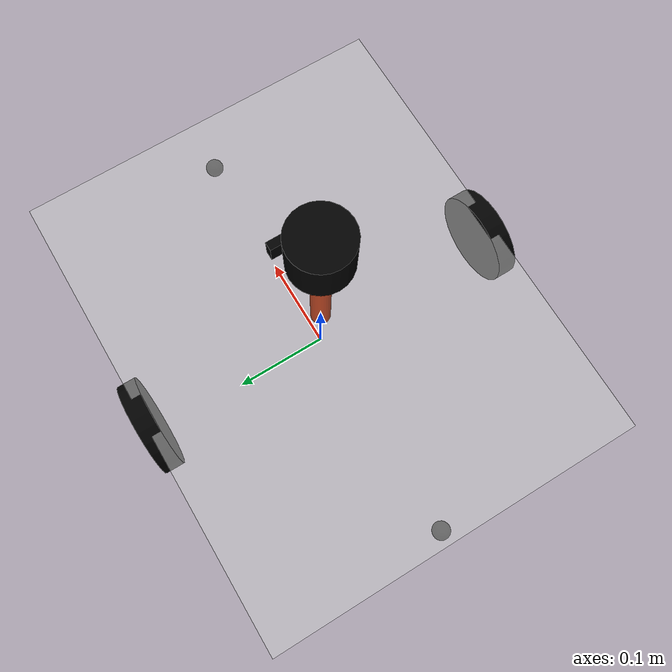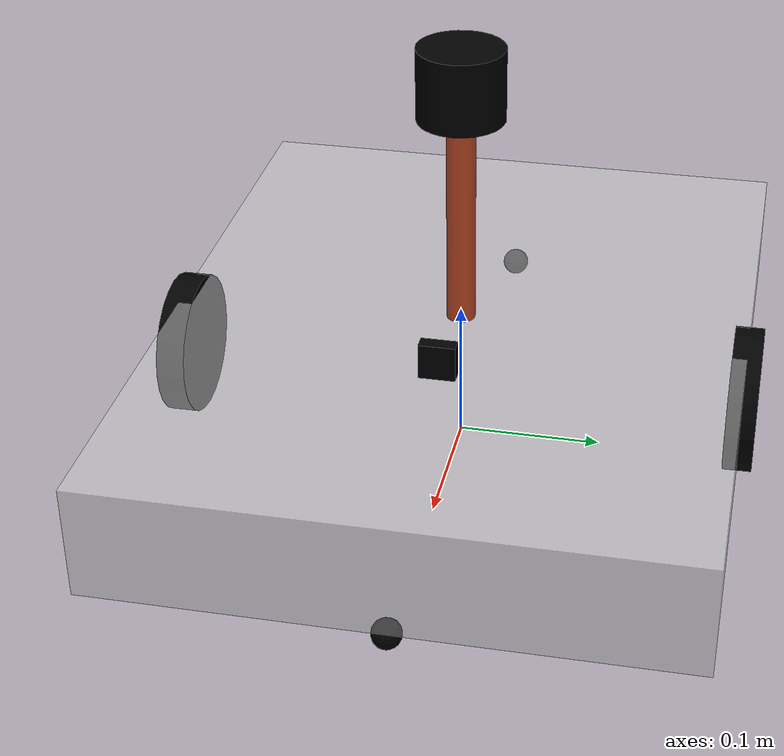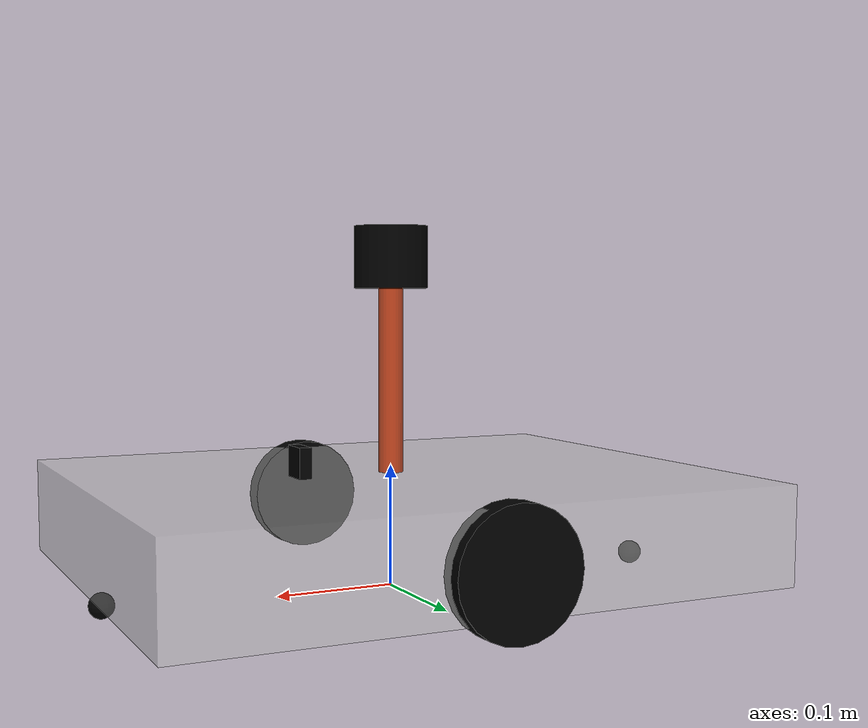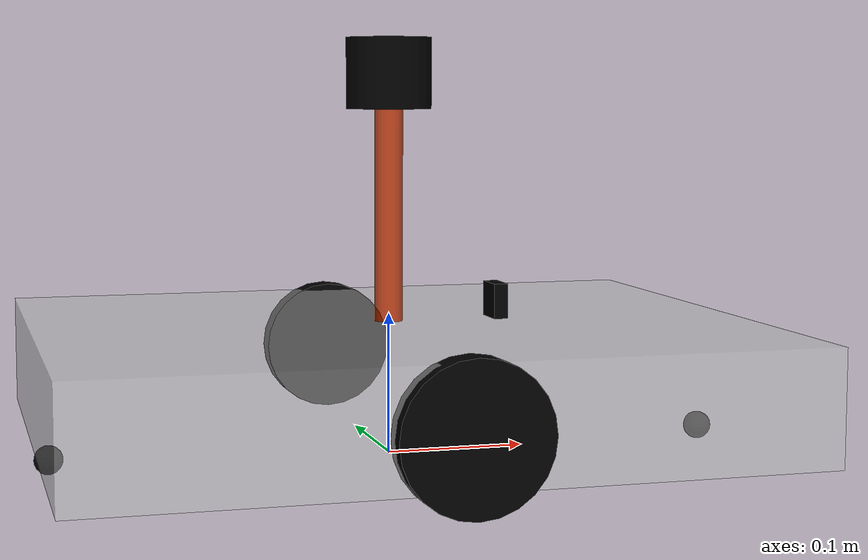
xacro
<?xml version="1.0" encoding="UTF-8" ?>
<!-- combination -->
<robot name="car" xmlns:xacro="http://wiki.ros.org/xacro">
    <xacro:include filename="base.xacro" />
    <xacro:include filename="chassis.xacro" />
    <xacro:include filename="camera.xacro" />
    <xacro:include filename="radar.xacro" />
    <xacro:include filename="move.xacro" />
</robot>

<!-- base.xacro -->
<robot name="base" xmlns:xacro="http://www.ros.org/wiki/xacro">

    <xacro:property name="PI" value="3.1415926"/>

    <!-- inertia -->
    <xacro:macro name="sphere_inertial_matrix" params="m r">
        <inertial>
            <mass value="${m}" />
            <inertia ixx="${2*m*r*r/5}" ixy="0" ixz="0"
                     iyy="${2*m*r*r/5}" iyz="0"
                     izz="${2*m*r*r/5}" />
        </inertial>
    </xacro:macro>

    <xacro:macro name="cylinder_inertial_matrix" params="m r h">
        <inertial>
            <mass value="${m}" />
            <inertia ixx="${m*(3*r*r+h*h)/12}" ixy = "0" ixz = "0"
                     iyy="${m*(3*r*r+h*h)/12}" iyz = "0"
                     izz="${m*r*r/2}" />
        </inertial>
    </xacro:macro>

    <xacro:macro name="box_inertial_matrix" params="m l w h">
        <inertial>
            <mass value="${m}" />
            <inertia ixx="${m*(h*h + l*l)/12}" ixy = "0" ixz = "0"
                     iyy="${m*(w*w + l*l)/12}" iyz= "0"
                     izz="${m*(w*w + h*h)/12}" />
        </inertial>
    </xacro:macro>

    <!-- color -->
    <material name="black">
        <color rgba="0.0 0.0 0.0 1.0" />
    </material>
    <material name="grey">
        <color rgba="0.8 0.8 0.8 0.5" />
    </material>
    <material name="red">
        <color rgba="1.0 0.0 0.0 0.5" />
    </material>
    <material name="green">
        <color rgba="0.0 1.0 0.0 0.5" />
    </material>
    <material name="blue">
        <color rgba="0.0 0.0 1.0 0.5" />
    </material>
    <material name="yellow">
        <color rgba="0.5 0.3 0.0 0.5" />
    </material>
</robot>

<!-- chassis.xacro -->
<robot name="my_base" xmlns:xacro="http://www.ros.org/wiki/xacro">

    <xacro:property name="base_footprint_radius" value="0.001" />
    <xacro:property name="base_link_length" value="0.5" />
    <xacro:property name="base_link_width" value="0.4" />
    <xacro:property name="base_link_height" value="0.08" />
    <xacro:property name="earth_space" value="0.015" />
    <xacro:property name="base_link_m" value="0.5" />

    <link name="base_footprint">
        <visual>
            <geometry>
                <sphere radius="${base_footprint_radius}" />
            </geometry>
        </visual>
    </link>

    <link name="base_link">
        <visual>
            <geometry>
                <box size="${base_link_length} ${base_link_width} ${base_link_height}" />
            </geometry>
            <origin xyz="0 0 0" rpy="0 0 0" />
            <material name="grey" />
        </visual>
        <collision>
            <geometry>
                <box size="${base_link_length} ${base_link_width} ${base_link_height}" />
            </geometry>
            <origin xyz="0 0 0" rpy="0 0 0" />
        </collision>
        <xacro:box_inertial_matrix m="${base_link_m}" l="${base_link_length}" w="${base_link_width}" h="${base_link_height}" />
    </link>

    <joint name="base_link2base_footprint" type="fixed">
        <parent link="base_footprint" />
        <child link="base_link" />
        <origin xyz="0 0 ${earth_space + base_link_height / 2}" />
    </joint>

    <gazebo reference="base_link">
        <material>Gazebo/Black</material>
    </gazebo>

    <!-- driving wheels -->
    <xacro:property name="wheel_radius" value="0.05" />
    <xacro:property name="wheel_length" value="0.02" />
    <xacro:property name="wheel_m" value="0.05" />

    <xacro:macro name="add_wheels" params="name reflect">
        <link name="${name}_wheel">
            <visual>
                <geometry>
                    <cylinder radius="${wheel_radius}" length="${wheel_length}" />
                </geometry>
                <origin xyz="0 0 0" rpy="${PI / 2} 0 0" />
                <material name="black" />
            </visual>
            <collision>
                <geometry>
                    <cylinder radius="${wheel_radius}" length="${wheel_length}" />
                </geometry>
                <origin xyz="0 0 0" rpy="${PI / 2} 0 0" />
            </collision>
            <xacro:cylinder_inertial_matrix m="${wheel_m}" r="${wheel_radius}" h="${wheel_length}" />
        </link>

        <joint name="${name}_wheel2base_link" type="continuous">
            <parent link="base_link" />
            <child link="${name}_wheel" />
            <origin xyz="0 ${reflect * base_link_width / 2} ${-(earth_space + base_link_height / 2 - wheel_radius)}" />
            <axis xyz="0 1 0" />
        </joint>

        <gazebo reference="${name}_wheel">
            <material>Gazebo/Red</material>
        </gazebo>
    </xacro:macro>

    <xacro:add_wheels name="left" reflect="1" />
    <xacro:add_wheels name="right" reflect="-1" />

    <!-- support wheels -->
    <xacro:property name="support_wheel_radius" value="0.01" />
    <xacro:property name="support_wheel_m" value="0.03" />

    <xacro:macro name="add_support_wheel" params="name reflect" >
        <link name="${name}_wheel">
            <visual>
                <geometry>
                    <sphere radius="${support_wheel_radius}" />
                </geometry>
                <origin xyz="0 0 0" rpy="0 0 0" />
                <material name="black" />
            </visual>
            <collision>
                <geometry>
                    <sphere radius="${support_wheel_radius}" />
                </geometry>
                <origin xyz="0 0 0" rpy="0 0 0" />
            </collision>
            <xacro:sphere_inertial_matrix m="${support_wheel_m}" r="${support_wheel_radius}" />
        </link>

        <joint name="${name}_wheel2base_link" type="continuous">
            <parent link="base_link" />
            <child link="${name}_wheel" />
            <origin xyz="${reflect * (base_link_length / 2 - support_wheel_radius)} 0 ${-(base_link_height / 2 + earth_space / 2)}" />
            <axis xyz="1 1 1" />
        </joint>
        <gazebo reference="${name}_wheel">
            <material>Gazebo/Red</material>
        </gazebo>
    </xacro:macro>

    <xacro:add_support_wheel name="front" reflect="1" />
    <xacro:add_support_wheel name="back" reflect="-1" />

</robot>

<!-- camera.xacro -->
<robot name="camera" xmlns:xacro="http://wiki.ros.org/xacro">

    <xacro:property name="camera_length" value="0.01" />
    <xacro:property name="camera_width" value="0.025" />
    <xacro:property name="camera_height" value="0.025" />
    <xacro:property name="camera_x" value="0.08" />
    <xacro:property name="camera_y" value="0.0" />
    <xacro:property name="camera_z" value="${base_link_height / 2 + camera_height / 2}" />
    <xacro:property name="camera_m" value="0.01" />

    <link name="camera">
        <visual>
            <geometry>
                <box size="${camera_length} ${camera_width} ${camera_height}" />
            </geometry>
            <origin xyz="0.0 0.0 0.0" rpy="0.0 0.0 0.0" />
            <material name="black" />
        </visual>
        <collision>
            <geometry>
                <box size="${camera_length} ${camera_width} ${camera_height}" />
            </geometry>
            <origin xyz="0.0 0.0 0.0" rpy="0.0 0.0 0.0" />
        </collision>
        <xacro:box_inertial_matrix m="${camera_m}" l="${camera_length}" w="${camera_width}" h="${camera_height}" />
    </link>

    <joint name="camera2base_link" type="fixed">
        <parent link="base_link" />
        <child link="camera" />
        <origin xyz="${camera_x} ${camera_y} ${camera_z}" />
    </joint>
    <gazebo reference="camera">
        <material>Gazebo/Blue</material>
    </gazebo>
</robot>

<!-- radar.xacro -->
<robot name="laser" xmlns:xacro="http://wiki.ros.org/xacro">

    <xacro:property name="support_height" value="0.15" />
    <xacro:property name="support_radius" value="0.01" />
    <xacro:property name="support_x" value="0.0" />
    <xacro:property name="support_y" value="0.0" />
    <xacro:property name="support_z" value="${base_link_height / 2 + support_height / 2}" />
    <xacro:property name="support_m" value="0.02" />

    <link name="support">
        <visual>
            <geometry>
                <cylinder radius="${support_radius}" length="${support_height}" />
            </geometry>
            <origin xyz="0.0 0.0 0.0" rpy="0.0 0.0 0.0" />
            <material name="red">
                <color rgba="0.8 0.2 0.0 0.8" />
            </material>
        </visual>

        <collision>
            <geometry>
                <cylinder radius="${support_radius}" length="${support_height}" />
            </geometry>
            <origin xyz="0.0 0.0 0.0" rpy="0.0 0.0 0.0" />
        </collision>

        <xacro:cylinder_inertial_matrix m="${support_m}" r="${support_radius}" h="${support_height}" />

    </link>

    <joint name="support2base_link" type="fixed">
        <parent link="base_link" />
        <child link="support" />
        <origin xyz="${support_x} ${support_y} ${support_z}" />
    </joint>

    <gazebo reference="support">
        <material>Gazebo/White</material>
    </gazebo>

    <xacro:property name="laser_length" value="0.05" />
    <xacro:property name="laser_radius" value="0.03" />
    <xacro:property name="laser_x" value="0.0" />
    <xacro:property name="laser_y" value="0.0" />
    <xacro:property name="laser_z" value="${support_height / 2 + laser_length / 2}" />
    <xacro:property name="laser_m" value="0.1" />

    <link name="laser">
        <visual>
            <geometry>
                <cylinder radius="${laser_radius}" length="${laser_length}" />
            </geometry>
            <origin xyz="0.0 0.0 0.0" rpy="0.0 0.0 0.0" />
            <material name="black" />
        </visual>
        <collision>
            <geometry>
                <cylinder radius="${laser_radius}" length="${laser_length}" />
            </geometry>
            <origin xyz="0.0 0.0 0.0" rpy="0.0 0.0 0.0" />
        </collision>
        <xacro:cylinder_inertial_matrix m="${laser_m}" r="${laser_radius}" h="${laser_length}" />
    </link>

    <joint name="laser2support" type="fixed">
        <parent link="support" />
        <child link="laser" />
        <origin xyz="${laser_x} ${laser_y} ${laser_z}" />
    </joint>
    <gazebo reference="laser">
        <material>Gazebo/Black</material>
    </gazebo>
</robot>
